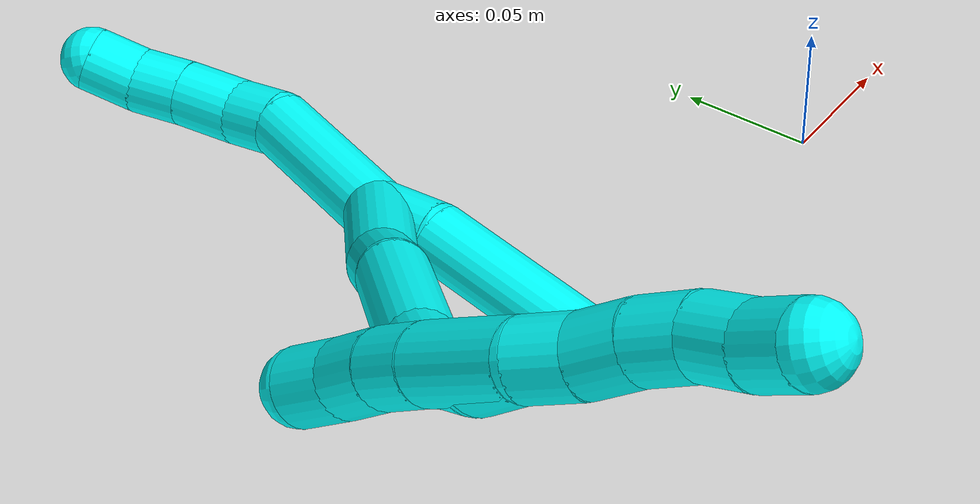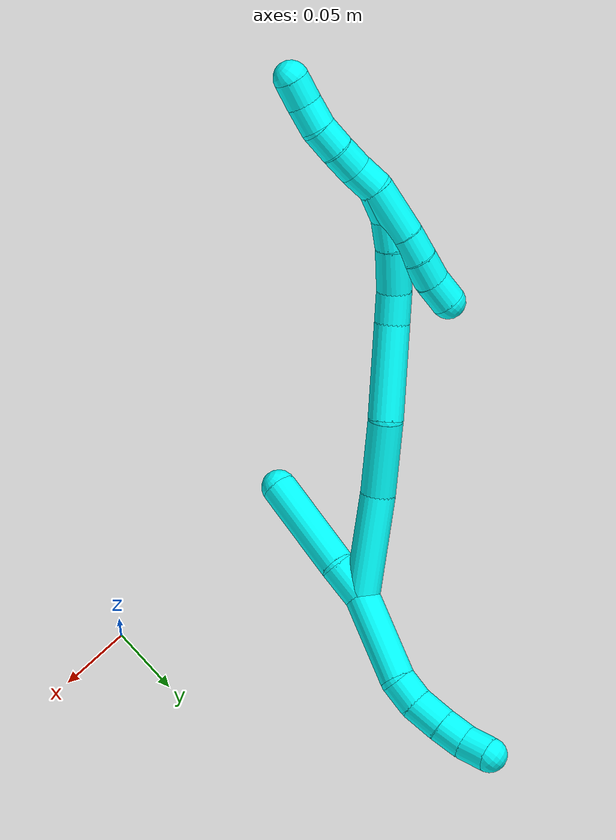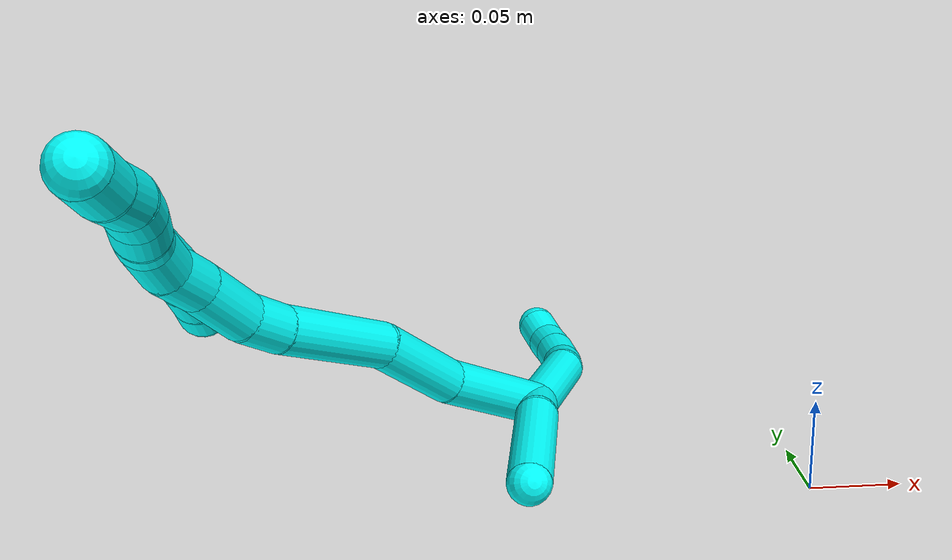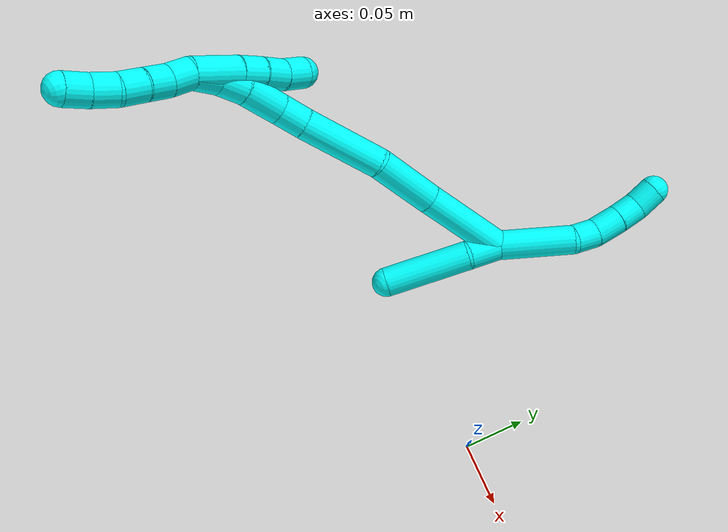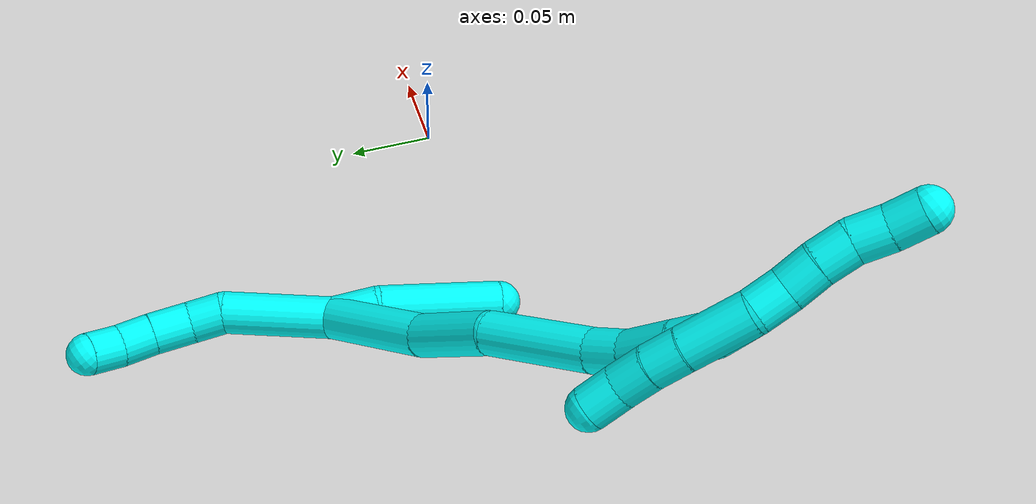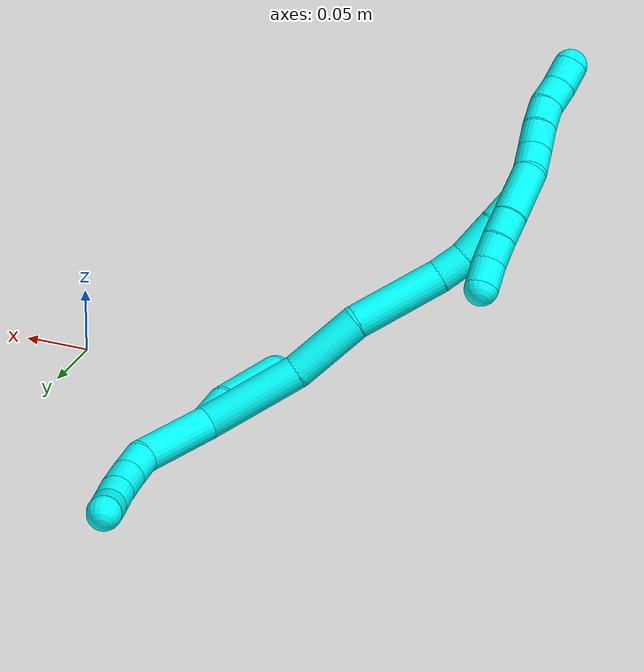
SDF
<sdf version="1.7">
 <world name="default">
  <model name="3">
   <static>0</static>
   <link name="3">
    <collision name="collision-cylinder-e_1_2_8">
     <pose>-0.000376 0.020792 -0.02478 -2.44348 -0.011616 0.031913</pose>
     <geometry><cylinder><radius>0.0125</radius><length>0.064698</length></cylinder></geometry>
     <surface>
      <friction><ode><mu>1.16</mu><mu2>1.16</mu2><slip1>0</slip1><slip2>0</slip2></ode></friction>
      <contact><ode><kp>1e+06</kp><kd>1</kd><max_vel>0</max_vel><min_depth>0.001</min_depth></ode></contact>
     </surface>
    </collision>
    <visual name="visual-cylinder-e_1_2_8">
     <pose>-0.000376 0.020792 -0.02478 -2.44348 -0.011616 0.031913</pose>
     <geometry><cylinder><radius>0.0125</radius><length>0.064698</length></cylinder></geometry>
     <material><ambient>0.003922 1 0.996078 1</ambient></material>
    </visual>
    <collision name="collision-cylinder-e_2_8_9">
     <pose>-0.001257 0.045202 -0.059178 -2.78181 -0.049157 0.268736</pose>
     <geometry><cylinder><radius>0.0125</radius><length>0.020578</length></cylinder></geometry>
     <surface>
      <friction><ode><mu>1.16</mu><mu2>1.16</mu2><slip1>0</slip1><slip2>0</slip2></ode></friction>
      <contact><ode><kp>1e+06</kp><kd>1</kd><max_vel>0</max_vel><min_depth>0.001</min_depth></ode></contact>
     </surface>
    </collision>
    <visual name="visual-cylinder-e_2_8_9">
     <pose>-0.001257 0.045202 -0.059178 -2.78181 -0.049157 0.268736</pose>
     <geometry><cylinder><radius>0.0125</radius><length>0.020578</length></cylinder></geometry>
     <material><ambient>0.003922 1 0.996078 1</ambient></material>
    </visual>
    <collision name="collision-cylinder-e_3_9_10">
     <pose>-0.005739 0.05285 -0.079468 -2.78052 -0.335386 1.49555</pose>
     <geometry><cylinder><radius>0.0125</radius><length>0.024162</length></cylinder></geometry>
     <surface>
      <friction><ode><mu>1.16</mu><mu2>1.16</mu2><slip1>0</slip1><slip2>0</slip2></ode></friction>
      <contact><ode><kp>1e+06</kp><kd>1</kd><max_vel>0</max_vel><min_depth>0.001</min_depth></ode></contact>
     </surface>
    </collision>
    <visual name="visual-cylinder-e_3_9_10">
     <pose>-0.005739 0.05285 -0.079468 -2.78052 -0.335386 1.49555</pose>
     <geometry><cylinder><radius>0.0125</radius><length>0.024162</length></cylinder></geometry>
     <material><ambient>0.003922 1 0.996078 1</ambient></material>
    </visual>
    <collision name="collision-cylinder-e_4_10_11">
     <pose>-0.013314 0.059633 -0.099133 -2.84454 -0.365457 1.78031</pose>
     <geometry><cylinder><radius>0.0125</radius><length>0.02014</length></cylinder></geometry>
     <surface>
      <friction><ode><mu>1.16</mu><mu2>1.16</mu2><slip1>0</slip1><slip2>0</slip2></ode></friction>
      <contact><ode><kp>1e+06</kp><kd>1</kd><max_vel>0</max_vel><min_depth>0.001</min_depth></ode></contact>
     </surface>
    </collision>
    <visual name="visual-cylinder-e_4_10_11">
     <pose>-0.013314 0.059633 -0.099133 -2.84454 -0.365457 1.78031</pose>
     <geometry><cylinder><radius>0.0125</radius><length>0.02014</length></cylinder></geometry>
     <material><ambient>0.003922 1 0.996078 1</ambient></material>
    </visual>
    <collision name="collision-cylinder-e_5_11_6">
     <pose>-0.023032 0.065589 -0.115647 -2.73897 -0.642612 2.04155</pose>
     <geometry><cylinder><radius>0.0125</radius><length>0.020422</length></cylinder></geometry>
     <surface>
      <friction><ode><mu>1.16</mu><mu2>1.16</mu2><slip1>0</slip1><slip2>0</slip2></ode></friction>
      <contact><ode><kp>1e+06</kp><kd>1</kd><max_vel>0</max_vel><min_depth>0.001</min_depth></ode></contact>
     </surface>
    </collision>
    <visual name="visual-cylinder-e_5_11_6">
     <pose>-0.023032 0.065589 -0.115647 -2.73897 -0.642612 2.04155</pose>
     <geometry><cylinder><radius>0.0125</radius><length>0.020422</length></cylinder></geometry>
     <material><ambient>0.003922 1 0.996078 1</ambient></material>
    </visual>
    <collision name="collision-cylinder-e_1_2_12">
     <pose>0.001625 -0.005526 0.012606 0.413104 0.117511 0.02465</pose>
     <geometry><cylinder><radius>0.0125</radius><length>0.02772</length></cylinder></geometry>
     <surface>
      <friction><ode><mu>1.16</mu><mu2>1.16</mu2><slip1>0</slip1><slip2>0</slip2></ode></friction>
      <contact><ode><kp>1e+06</kp><kd>1</kd><max_vel>0</max_vel><min_depth>0.001</min_depth></ode></contact>
     </surface>
    </collision>
    <visual name="visual-cylinder-e_1_2_12">
     <pose>0.001625 -0.005526 0.012606 0.413104 0.117511 0.02465</pose>
     <geometry><cylinder><radius>0.0125</radius><length>0.02772</length></cylinder></geometry>
     <material><ambient>0.003922 1 0.996078 1</ambient></material>
    </visual>
    <collision name="collision-cylinder-e_2_12_5">
     <pose>0.012153 -0.031455 0.053683 0.621819 0.248907 0.080354</pose>
     <geometry><cylinder><radius>0.0125</radius><length>0.07228</length></cylinder></geometry>
     <surface>
      <friction><ode><mu>1.16</mu><mu2>1.16</mu2><slip1>0</slip1><slip2>0</slip2></ode></friction>
      <contact><ode><kp>1e+06</kp><kd>1</kd><max_vel>0</max_vel><min_depth>0.001</min_depth></ode></contact>
     </surface>
    </collision>
    <visual name="visual-cylinder-e_2_12_5">
     <pose>0.012153 -0.031455 0.053683 0.621819 0.248907 0.080354</pose>
     <geometry><cylinder><radius>0.0125</radius><length>0.07228</length></cylinder></geometry>
     <material><ambient>0.003922 1 0.996078 1</ambient></material>
    </visual>
    <collision name="collision-cylinder-e_1_2_13">
     <pose>-0.023309 -0.02024 0.02061 0.77634 -0.67895 -0.286833</pose>
     <geometry><cylinder><radius>0.0125</radius><length>0.074237</length></cylinder></geometry>
     <surface>
      <friction><ode><mu>1.16</mu><mu2>1.16</mu2><slip1>0</slip1><slip2>0</slip2></ode></friction>
      <contact><ode><kp>1e+06</kp><kd>1</kd><max_vel>0</max_vel><min_depth>0.001</min_depth></ode></contact>
     </surface>
    </collision>
    <visual name="visual-cylinder-e_1_2_13">
     <pose>-0.023309 -0.02024 0.02061 0.77634 -0.67895 -0.286833</pose>
     <geometry><cylinder><radius>0.0125</radius><length>0.074237</length></cylinder></geometry>
     <material><ambient>0.003922 1 0.996078 1</ambient></material>
    </visual>
    <collision name="collision-cylinder-e_2_13_14">
     <pose>-0.065509 -0.051003 0.05836 0.550626 -0.754076 -0.222793</pose>
     <geometry><cylinder><radius>0.0125</radius><length>0.055185</length></cylinder></geometry>
     <surface>
      <friction><ode><mu>1.16</mu><mu2>1.16</mu2><slip1>0</slip1><slip2>0</slip2></ode></friction>
      <contact><ode><kp>1e+06</kp><kd>1</kd><max_vel>0</max_vel><min_depth>0.001</min_depth></ode></contact>
     </surface>
    </collision>
    <visual name="visual-cylinder-e_2_13_14">
     <pose>-0.065509 -0.051003 0.05836 0.550626 -0.754076 -0.222793</pose>
     <geometry><cylinder><radius>0.0125</radius><length>0.055185</length></cylinder></geometry>
     <material><ambient>0.003922 1 0.996078 1</ambient></material>
    </visual>
    <collision name="collision-cylinder-e_3_14_15">
     <pose>-0.102628 -0.081515 0.096117 0.769908 -0.565586 -0.234389</pose>
     <geometry><cylinder><radius>0.0125</radius><length>0.068027</length></cylinder></geometry>
     <surface>
      <friction><ode><mu>1.16</mu><mu2>1.16</mu2><slip1>0</slip1><slip2>0</slip2></ode></friction>
      <contact><ode><kp>1e+06</kp><kd>1</kd><max_vel>0</max_vel><min_depth>0.001</min_depth></ode></contact>
     </surface>
    </collision>
    <visual name="visual-cylinder-e_3_14_15">
     <pose>-0.102628 -0.081515 0.096117 0.769908 -0.565586 -0.234389</pose>
     <geometry><cylinder><radius>0.0125</radius><length>0.068027</length></cylinder></geometry>
     <material><ambient>0.003922 1 0.996078 1</ambient></material>
    </visual>
    <collision name="collision-cylinder-e_4_15_16">
     <pose>-0.127839 -0.107138 0.124067 0.655173 -0.646851 -0.226842</pose>
     <geometry><cylinder><radius>0.0125</radius><length>0.023175</length></cylinder></geometry>
     <surface>
      <friction><ode><mu>1.16</mu><mu2>1.16</mu2><slip1>0</slip1><slip2>0</slip2></ode></friction>
      <contact><ode><kp>1e+06</kp><kd>1</kd><max_vel>0</max_vel><min_depth>0.001</min_depth></ode></contact>
     </surface>
    </collision>
    <visual name="visual-cylinder-e_4_15_16">
     <pose>-0.127839 -0.107138 0.124067 0.655173 -0.646851 -0.226842</pose>
     <geometry><cylinder><radius>0.0125</radius><length>0.023175</length></cylinder></geometry>
     <material><ambient>0.003922 1 0.996078 1</ambient></material>
    </visual>
    <collision name="collision-cylinder-e_5_16_17">
     <pose>-0.145249 -0.117333 0.143088 0.372018 -0.69335 -0.13576</pose>
     <geometry><cylinder><radius>0.0125</radius><length>0.032627</length></cylinder></geometry>
     <surface>
      <friction><ode><mu>1.16</mu><mu2>1.16</mu2><slip1>0</slip1><slip2>0</slip2></ode></friction>
      <contact><ode><kp>1e+06</kp><kd>1</kd><max_vel>0</max_vel><min_depth>0.001</min_depth></ode></contact>
     </surface>
    </collision>
    <visual name="visual-cylinder-e_5_16_17">
     <pose>-0.145249 -0.117333 0.143088 0.372018 -0.69335 -0.13576</pose>
     <geometry><cylinder><radius>0.0125</radius><length>0.032627</length></cylinder></geometry>
     <material><ambient>0.003922 1 0.996078 1</ambient></material>
    </visual>
    <collision name="collision-cylinder-e_6_17_18">
     <pose>-0.161591 -0.125564 0.163701 0.39018 -0.549927 -0.111376</pose>
     <geometry><cylinder><radius>0.0125</radius><length>0.022638</length></cylinder></geometry>
     <surface>
      <friction><ode><mu>1.16</mu><mu2>1.16</mu2><slip1>0</slip1><slip2>0</slip2></ode></friction>
      <contact><ode><kp>1e+06</kp><kd>1</kd><max_vel>0</max_vel><min_depth>0.001</min_depth></ode></contact>
     </surface>
    </collision>
    <visual name="visual-cylinder-e_6_17_18">
     <pose>-0.161591 -0.125564 0.163701 0.39018 -0.549927 -0.111376</pose>
     <geometry><cylinder><radius>0.0125</radius><length>0.022638</length></cylinder></geometry>
     <material><ambient>0.003922 1 0.996078 1</ambient></material>
    </visual>
    <collision name="collision-cylinder-e_7_18_1">
     <pose>-0.172623 -0.130022 0.183514 0.07219 -0.438328 -0.016086</pose>
     <geometry><cylinder><radius>0.0125</radius><length>0.024112</length></cylinder></geometry>
     <surface>
      <friction><ode><mu>1.16</mu><mu2>1.16</mu2><slip1>0</slip1><slip2>0</slip2></ode></friction>
      <contact><ode><kp>1e+06</kp><kd>1</kd><max_vel>0</max_vel><min_depth>0.001</min_depth></ode></contact>
     </surface>
    </collision>
    <visual name="visual-cylinder-e_7_18_1">
     <pose>-0.172623 -0.130022 0.183514 0.07219 -0.438328 -0.016086</pose>
     <geometry><cylinder><radius>0.0125</radius><length>0.024112</length></cylinder></geometry>
     <material><ambient>0.003922 1 0.996078 1</ambient></material>
    </visual>
    <collision name="collision-cylinder-e_1_1_19">
     <pose>-0.177617 -0.131227 0.204392 0.041771 0.012306 0.000257</pose>
     <geometry><cylinder><radius>0.0125</radius><length>0.02</length></cylinder></geometry>
     <surface>
      <friction><ode><mu>1.16</mu><mu2>1.16</mu2><slip1>0</slip1><slip2>0</slip2></ode></friction>
      <contact><ode><kp>1e+06</kp><kd>1</kd><max_vel>0</max_vel><min_depth>0.001</min_depth></ode></contact>
     </surface>
    </collision>
    <visual name="visual-cylinder-e_1_1_19">
     <pose>-0.177617 -0.131227 0.204392 0.041771 0.012306 0.000257</pose>
     <geometry><cylinder><radius>0.0125</radius><length>0.02</length></cylinder></geometry>
     <material><ambient>0.003922 1 0.996078 1</ambient></material>
    </visual>
    <collision name="collision-cylinder-e_2_19_20">
     <pose>-0.179031 -0.131171 0.224252 -0.047884 -0.154336 0.003703</pose>
     <geometry><cylinder><radius>0.0125</radius><length>0.02</length></cylinder></geometry>
     <surface>
      <friction><ode><mu>1.16</mu><mu2>1.16</mu2><slip1>0</slip1><slip2>0</slip2></ode></friction>
      <contact><ode><kp>1e+06</kp><kd>1</kd><max_vel>0</max_vel><min_depth>0.001</min_depth></ode></contact>
     </surface>
    </collision>
    <visual name="visual-cylinder-e_2_19_20">
     <pose>-0.179031 -0.131171 0.224252 -0.047884 -0.154336 0.003703</pose>
     <geometry><cylinder><radius>0.0125</radius><length>0.02</length></cylinder></geometry>
     <material><ambient>0.003922 1 0.996078 1</ambient></material>
    </visual>
    <collision name="collision-cylinder-e_3_20_21">
     <pose>-0.181628 -0.131347 0.244045 0.065265 -0.106169 -0.003469</pose>
     <geometry><cylinder><radius>0.0125</radius><length>0.02</length></cylinder></geometry>
     <surface>
      <friction><ode><mu>1.16</mu><mu2>1.16</mu2><slip1>0</slip1><slip2>0</slip2></ode></friction>
      <contact><ode><kp>1e+06</kp><kd>1</kd><max_vel>0</max_vel><min_depth>0.001</min_depth></ode></contact>
     </surface>
    </collision>
    <visual name="visual-cylinder-e_3_20_21">
     <pose>-0.181628 -0.131347 0.244045 0.065265 -0.106169 -0.003469</pose>
     <geometry><cylinder><radius>0.0125</radius><length>0.02</length></cylinder></geometry>
     <material><ambient>0.003922 1 0.996078 1</ambient></material>
    </visual>
    <collision name="collision-cylinder-e_4_21_22">
     <pose>-0.184478 -0.134847 0.263383 0.294099 -0.179971 -0.026728</pose>
     <geometry><cylinder><radius>0.0125</radius><length>0.02</length></cylinder></geometry>
     <surface>
      <friction><ode><mu>1.16</mu><mu2>1.16</mu2><slip1>0</slip1><slip2>0</slip2></ode></friction>
      <contact><ode><kp>1e+06</kp><kd>1</kd><max_vel>0</max_vel><min_depth>0.001</min_depth></ode></contact>
     </surface>
    </collision>
    <visual name="visual-cylinder-e_4_21_22">
     <pose>-0.184478 -0.134847 0.263383 0.294099 -0.179971 -0.026728</pose>
     <geometry><cylinder><radius>0.0125</radius><length>0.02</length></cylinder></geometry>
     <material><ambient>0.003922 1 0.996078 1</ambient></material>
    </visual>
    <collision name="collision-cylinder-e_5_22_4">
     <pose>-0.189238 -0.139418 0.282192 0.181036 -0.30159 -0.027582</pose>
     <geometry><cylinder><radius>0.0125</radius><length>0.02</length></cylinder></geometry>
     <surface>
      <friction><ode><mu>1.16</mu><mu2>1.16</mu2><slip1>0</slip1><slip2>0</slip2></ode></friction>
      <contact><ode><kp>1e+06</kp><kd>1</kd><max_vel>0</max_vel><min_depth>0.001</min_depth></ode></contact>
     </surface>
    </collision>
    <visual name="visual-cylinder-e_5_22_4">
     <pose>-0.189238 -0.139418 0.282192 0.181036 -0.30159 -0.027582</pose>
     <geometry><cylinder><radius>0.0125</radius><length>0.02</length></cylinder></geometry>
     <material><ambient>0.003922 1 0.996078 1</ambient></material>
    </visual>
    <collision name="collision-cylinder-e_1_1_23">
     <pose>-0.173406 -0.128137 0.175334 -3.00239 0.221379 -2.02115</pose>
     <geometry><cylinder><radius>0.0125</radius><length>0.039472</length></cylinder></geometry>
     <surface>
      <friction><ode><mu>1.16</mu><mu2>1.16</mu2><slip1>0</slip1><slip2>0</slip2></ode></friction>
      <contact><ode><kp>1e+06</kp><kd>1</kd><max_vel>0</max_vel><min_depth>0.001</min_depth></ode></contact>
     </surface>
    </collision>
    <visual name="visual-cylinder-e_1_1_23">
     <pose>-0.173406 -0.128137 0.175334 -3.00239 0.221379 -2.02115</pose>
     <geometry><cylinder><radius>0.0125</radius><length>0.039472</length></cylinder></geometry>
     <material><ambient>0.003922 1 0.996078 1</ambient></material>
    </visual>
    <collision name="collision-cylinder-e_2_23_24">
     <pose>-0.166158 -0.124237 0.146702 -3.0138 0.293537 -2.32468</pose>
     <geometry><cylinder><radius>0.0125</radius><length>0.020146</length></cylinder></geometry>
     <surface>
      <friction><ode><mu>1.16</mu><mu2>1.16</mu2><slip1>0</slip1><slip2>0</slip2></ode></friction>
      <contact><ode><kp>1e+06</kp><kd>1</kd><max_vel>0</max_vel><min_depth>0.001</min_depth></ode></contact>
     </surface>
    </collision>
    <visual name="visual-cylinder-e_2_23_24">
     <pose>-0.166158 -0.124237 0.146702 -3.0138 0.293537 -2.32468</pose>
     <geometry><cylinder><radius>0.0125</radius><length>0.020146</length></cylinder></geometry>
     <material><ambient>0.003922 1 0.996078 1</ambient></material>
    </visual>
    <collision name="collision-cylinder-e_3_24_25">
     <pose>-0.159801 -0.122517 0.127706 -3.08956 0.349546 -2.84897</pose>
     <geometry><cylinder><radius>0.0125</radius><length>0.020107</length></cylinder></geometry>
     <surface>
      <friction><ode><mu>1.16</mu><mu2>1.16</mu2><slip1>0</slip1><slip2>0</slip2></ode></friction>
      <contact><ode><kp>1e+06</kp><kd>1</kd><max_vel>0</max_vel><min_depth>0.001</min_depth></ode></contact>
     </surface>
    </collision>
    <visual name="visual-cylinder-e_3_24_25">
     <pose>-0.159801 -0.122517 0.127706 -3.08956 0.349546 -2.84897</pose>
     <geometry><cylinder><radius>0.0125</radius><length>0.020107</length></cylinder></geometry>
     <material><ambient>0.003922 1 0.996078 1</ambient></material>
    </visual>
    <collision name="collision-cylinder-e_4_25_3">
     <pose>-0.154415 -0.121788 0.108326 -3.11768 0.192869 -2.89564</pose>
     <geometry><cylinder><radius>0.0125</radius><length>0.020275</length></cylinder></geometry>
     <surface>
      <friction><ode><mu>1.16</mu><mu2>1.16</mu2><slip1>0</slip1><slip2>0</slip2></ode></friction>
      <contact><ode><kp>1e+06</kp><kd>1</kd><max_vel>0</max_vel><min_depth>0.001</min_depth></ode></contact>
     </surface>
    </collision>
    <visual name="visual-cylinder-e_4_25_3">
     <pose>-0.154415 -0.121788 0.108326 -3.11768 0.192869 -2.89564</pose>
     <geometry><cylinder><radius>0.0125</radius><length>0.020275</length></cylinder></geometry>
     <material><ambient>0.003922 1 0.996078 1</ambient></material>
    </visual>
    <collision name="collision-sphere-3">
     <pose>-0.152471 -0.12155 0.098379 0 -0 0</pose>
     <geometry><sphere><radius>0.0125</radius></sphere></geometry>
     <surface>
      <friction><ode><mu>1.16</mu><mu2>1.16</mu2><slip1>0</slip1><slip2>0</slip2></ode></friction>
      <contact><ode><kp>1e+06</kp><kd>1</kd><max_vel>0</max_vel><min_depth>0.001</min_depth></ode></contact>
     </surface>
    </collision>
    <visual name="visual-sphere-3">
     <pose>-0.152471 -0.12155 0.098379 0 -0 0</pose>
     <geometry><sphere><radius>0.0125</radius></sphere></geometry>
     <material><ambient>0.003922 1 0.996078 1</ambient></material>
    </visual>
    <collision name="collision-sphere-25">
     <pose>-0.156358 -0.122026 0.118273 0 -0 0</pose>
     <geometry><sphere><radius>0.0125</radius></sphere></geometry>
     <surface>
      <friction><ode><mu>1.16</mu><mu2>1.16</mu2><slip1>0</slip1><slip2>0</slip2></ode></friction>
      <contact><ode><kp>1e+06</kp><kd>1</kd><max_vel>0</max_vel><min_depth>0.001</min_depth></ode></contact>
     </surface>
    </collision>
    <visual name="visual-sphere-25">
     <pose>-0.156358 -0.122026 0.118273 0 -0 0</pose>
     <geometry><sphere><radius>0.0125</radius></sphere></geometry>
     <material><ambient>0.003922 1 0.996078 1</ambient></material>
    </visual>
    <collision name="collision-sphere-24">
     <pose>-0.163244 -0.123008 0.137139 0 -0 0</pose>
     <geometry><sphere><radius>0.0125</radius></sphere></geometry>
     <surface>
      <friction><ode><mu>1.16</mu><mu2>1.16</mu2><slip1>0</slip1><slip2>0</slip2></ode></friction>
      <contact><ode><kp>1e+06</kp><kd>1</kd><max_vel>0</max_vel><min_depth>0.001</min_depth></ode></contact>
     </surface>
    </collision>
    <visual name="visual-sphere-24">
     <pose>-0.163244 -0.123008 0.137139 0 -0 0</pose>
     <geometry><sphere><radius>0.0125</radius></sphere></geometry>
     <material><ambient>0.003922 1 0.996078 1</ambient></material>
    </visual>
    <collision name="collision-sphere-23">
     <pose>-0.169073 -0.125466 0.156266 0 -0 0</pose>
     <geometry><sphere><radius>0.0125</radius></sphere></geometry>
     <surface>
      <friction><ode><mu>1.16</mu><mu2>1.16</mu2><slip1>0</slip1><slip2>0</slip2></ode></friction>
      <contact><ode><kp>1e+06</kp><kd>1</kd><max_vel>0</max_vel><min_depth>0.001</min_depth></ode></contact>
     </surface>
    </collision>
    <visual name="visual-sphere-23">
     <pose>-0.169073 -0.125466 0.156266 0 -0 0</pose>
     <geometry><sphere><radius>0.0125</radius></sphere></geometry>
     <material><ambient>0.003922 1 0.996078 1</ambient></material>
    </visual>
    <collision name="collision-sphere-4">
     <pose>-0.192208 -0.141138 0.291585 0 -0 0</pose>
     <geometry><sphere><radius>0.0125</radius></sphere></geometry>
     <surface>
      <friction><ode><mu>1.16</mu><mu2>1.16</mu2><slip1>0</slip1><slip2>0</slip2></ode></friction>
      <contact><ode><kp>1e+06</kp><kd>1</kd><max_vel>0</max_vel><min_depth>0.001</min_depth></ode></contact>
     </surface>
    </collision>
    <visual name="visual-sphere-4">
     <pose>-0.192208 -0.141138 0.291585 0 -0 0</pose>
     <geometry><sphere><radius>0.0125</radius></sphere></geometry>
     <material><ambient>0.003922 1 0.996078 1</ambient></material>
    </visual>
    <collision name="collision-sphere-22">
     <pose>-0.186268 -0.137699 0.272799 0 -0 0</pose>
     <geometry><sphere><radius>0.0125</radius></sphere></geometry>
     <surface>
      <friction><ode><mu>1.16</mu><mu2>1.16</mu2><slip1>0</slip1><slip2>0</slip2></ode></friction>
      <contact><ode><kp>1e+06</kp><kd>1</kd><max_vel>0</max_vel><min_depth>0.001</min_depth></ode></contact>
     </surface>
    </collision>
    <visual name="visual-sphere-22">
     <pose>-0.186268 -0.137699 0.272799 0 -0 0</pose>
     <geometry><sphere><radius>0.0125</radius></sphere></geometry>
     <material><ambient>0.003922 1 0.996078 1</ambient></material>
    </visual>
    <collision name="collision-sphere-21">
     <pose>-0.182688 -0.131995 0.253967 0 -0 0</pose>
     <geometry><sphere><radius>0.0125</radius></sphere></geometry>
     <surface>
      <friction><ode><mu>1.16</mu><mu2>1.16</mu2><slip1>0</slip1><slip2>0</slip2></ode></friction>
      <contact><ode><kp>1e+06</kp><kd>1</kd><max_vel>0</max_vel><min_depth>0.001</min_depth></ode></contact>
     </surface>
    </collision>
    <visual name="visual-sphere-21">
     <pose>-0.182688 -0.131995 0.253967 0 -0 0</pose>
     <geometry><sphere><radius>0.0125</radius></sphere></geometry>
     <material><ambient>0.003922 1 0.996078 1</ambient></material>
    </visual>
    <collision name="collision-sphere-20">
     <pose>-0.180568 -0.130698 0.234122 0 -0 0</pose>
     <geometry><sphere><radius>0.0125</radius></sphere></geometry>
     <surface>
      <friction><ode><mu>1.16</mu><mu2>1.16</mu2><slip1>0</slip1><slip2>0</slip2></ode></friction>
      <contact><ode><kp>1e+06</kp><kd>1</kd><max_vel>0</max_vel><min_depth>0.001</min_depth></ode></contact>
     </surface>
    </collision>
    <visual name="visual-sphere-20">
     <pose>-0.180568 -0.130698 0.234122 0 -0 0</pose>
     <geometry><sphere><radius>0.0125</radius></sphere></geometry>
     <material><ambient>0.003922 1 0.996078 1</ambient></material>
    </visual>
    <collision name="collision-sphere-6">
     <pose>-0.029151 0.068792 -0.123168 0 -0 0</pose>
     <geometry><sphere><radius>0.0125</radius></sphere></geometry>
     <surface>
      <friction><ode><mu>1.16</mu><mu2>1.16</mu2><slip1>0</slip1><slip2>0</slip2></ode></friction>
      <contact><ode><kp>1e+06</kp><kd>1</kd><max_vel>0</max_vel><min_depth>0.001</min_depth></ode></contact>
     </surface>
    </collision>
    <visual name="visual-sphere-6">
     <pose>-0.029151 0.068792 -0.123168 0 -0 0</pose>
     <geometry><sphere><radius>0.0125</radius></sphere></geometry>
     <material><ambient>0.003922 1 0.996078 1</ambient></material>
    </visual>
    <collision name="collision-sphere-11">
     <pose>-0.016913 0.062386 -0.108126 0 -0 0</pose>
     <geometry><sphere><radius>0.0125</radius></sphere></geometry>
     <surface>
      <friction><ode><mu>1.16</mu><mu2>1.16</mu2><slip1>0</slip1><slip2>0</slip2></ode></friction>
      <contact><ode><kp>1e+06</kp><kd>1</kd><max_vel>0</max_vel><min_depth>0.001</min_depth></ode></contact>
     </surface>
    </collision>
    <visual name="visual-sphere-11">
     <pose>-0.016913 0.062386 -0.108126 0 -0 0</pose>
     <geometry><sphere><radius>0.0125</radius></sphere></geometry>
     <material><ambient>0.003922 1 0.996078 1</ambient></material>
    </visual>
    <collision name="collision-sphere-10">
     <pose>-0.009715 0.05688 -0.090141 0 -0 0</pose>
     <geometry><sphere><radius>0.0125</radius></sphere></geometry>
     <surface>
      <friction><ode><mu>1.16</mu><mu2>1.16</mu2><slip1>0</slip1><slip2>0</slip2></ode></friction>
      <contact><ode><kp>1e+06</kp><kd>1</kd><max_vel>0</max_vel><min_depth>0.001</min_depth></ode></contact>
     </surface>
    </collision>
    <visual name="visual-sphere-10">
     <pose>-0.009715 0.05688 -0.090141 0 -0 0</pose>
     <geometry><sphere><radius>0.0125</radius></sphere></geometry>
     <material><ambient>0.003922 1 0.996078 1</ambient></material>
    </visual>
    <collision name="collision-sphere-9">
     <pose>-0.001763 0.04882 -0.068796 0 -0 0</pose>
     <geometry><sphere><radius>0.0125</radius></sphere></geometry>
     <surface>
      <friction><ode><mu>1.16</mu><mu2>1.16</mu2><slip1>0</slip1><slip2>0</slip2></ode></friction>
      <contact><ode><kp>1e+06</kp><kd>1</kd><max_vel>0</max_vel><min_depth>0.001</min_depth></ode></contact>
     </surface>
    </collision>
    <visual name="visual-sphere-9">
     <pose>-0.001763 0.04882 -0.068796 0 -0 0</pose>
     <geometry><sphere><radius>0.0125</radius></sphere></geometry>
     <material><ambient>0.003922 1 0.996078 1</ambient></material>
    </visual>
    <collision name="collision-sphere-2">
     <geometry><sphere><radius>0.0125</radius></sphere></geometry>
     <surface>
      <friction><ode><mu>1.16</mu><mu2>1.16</mu2><slip1>0</slip1><slip2>0</slip2></ode></friction>
      <contact><ode><kp>1e+06</kp><kd>1</kd><max_vel>0</max_vel><min_depth>0.001</min_depth></ode></contact>
     </surface>
    </collision>
    <visual name="visual-sphere-2">
     <geometry><sphere><radius>0.0125</radius></sphere></geometry>
     <material><ambient>0.003922 1 0.996078 1</ambient></material>
    </visual>
    <collision name="collision-sphere-19">
     <pose>-0.177494 -0.131644 0.214383 0 -0 0</pose>
     <geometry><sphere><radius>0.0125</radius></sphere></geometry>
     <surface>
      <friction><ode><mu>1.16</mu><mu2>1.16</mu2><slip1>0</slip1><slip2>0</slip2></ode></friction>
      <contact><ode><kp>1e+06</kp><kd>1</kd><max_vel>0</max_vel><min_depth>0.001</min_depth></ode></contact>
     </surface>
    </collision>
    <visual name="visual-sphere-19">
     <pose>-0.177494 -0.131644 0.214383 0 -0 0</pose>
     <geometry><sphere><radius>0.0125</radius></sphere></geometry>
     <material><ambient>0.003922 1 0.996078 1</ambient></material>
    </visual>
    <collision name="collision-sphere-8">
     <pose>-0.000752 0.041584 -0.049559 0 -0 0</pose>
     <geometry><sphere><radius>0.0125</radius></sphere></geometry>
     <surface>
      <friction><ode><mu>1.16</mu><mu2>1.16</mu2><slip1>0</slip1><slip2>0</slip2></ode></friction>
      <contact><ode><kp>1e+06</kp><kd>1</kd><max_vel>0</max_vel><min_depth>0.001</min_depth></ode></contact>
     </surface>
    </collision>
    <visual name="visual-sphere-8">
     <pose>-0.000752 0.041584 -0.049559 0 -0 0</pose>
     <geometry><sphere><radius>0.0125</radius></sphere></geometry>
     <material><ambient>0.003922 1 0.996078 1</ambient></material>
    </visual>
    <collision name="collision-sphere-12">
     <pose>0.00325 -0.011051 0.025213 0 -0 0</pose>
     <geometry><sphere><radius>0.0125</radius></sphere></geometry>
     <surface>
      <friction><ode><mu>1.16</mu><mu2>1.16</mu2><slip1>0</slip1><slip2>0</slip2></ode></friction>
      <contact><ode><kp>1e+06</kp><kd>1</kd><max_vel>0</max_vel><min_depth>0.001</min_depth></ode></contact>
     </surface>
    </collision>
    <visual name="visual-sphere-12">
     <pose>0.00325 -0.011051 0.025213 0 -0 0</pose>
     <geometry><sphere><radius>0.0125</radius></sphere></geometry>
     <material><ambient>0.003922 1 0.996078 1</ambient></material>
    </visual>
    <collision name="collision-sphere-5">
     <pose>0.021056 -0.051858 0.082153 0 -0 0</pose>
     <geometry><sphere><radius>0.0125</radius></sphere></geometry>
     <surface>
      <friction><ode><mu>1.16</mu><mu2>1.16</mu2><slip1>0</slip1><slip2>0</slip2></ode></friction>
      <contact><ode><kp>1e+06</kp><kd>1</kd><max_vel>0</max_vel><min_depth>0.001</min_depth></ode></contact>
     </surface>
    </collision>
    <visual name="visual-sphere-5">
     <pose>0.021056 -0.051858 0.082153 0 -0 0</pose>
     <geometry><sphere><radius>0.0125</radius></sphere></geometry>
     <material><ambient>0.003922 1 0.996078 1</ambient></material>
    </visual>
    <collision name="collision-sphere-13">
     <pose>-0.046619 -0.04048 0.04122 0 -0 0</pose>
     <geometry><sphere><radius>0.0125</radius></sphere></geometry>
     <surface>
      <friction><ode><mu>1.16</mu><mu2>1.16</mu2><slip1>0</slip1><slip2>0</slip2></ode></friction>
      <contact><ode><kp>1e+06</kp><kd>1</kd><max_vel>0</max_vel><min_depth>0.001</min_depth></ode></contact>
     </surface>
    </collision>
    <visual name="visual-sphere-13">
     <pose>-0.046619 -0.04048 0.04122 0 -0 0</pose>
     <geometry><sphere><radius>0.0125</radius></sphere></geometry>
     <material><ambient>0.003922 1 0.996078 1</ambient></material>
    </visual>
    <collision name="collision-sphere-14">
     <pose>-0.084399 -0.061527 0.0755 0 -0 0</pose>
     <geometry><sphere><radius>0.0125</radius></sphere></geometry>
     <surface>
      <friction><ode><mu>1.16</mu><mu2>1.16</mu2><slip1>0</slip1><slip2>0</slip2></ode></friction>
      <contact><ode><kp>1e+06</kp><kd>1</kd><max_vel>0</max_vel><min_depth>0.001</min_depth></ode></contact>
     </surface>
    </collision>
    <visual name="visual-sphere-14">
     <pose>-0.084399 -0.061527 0.0755 0 -0 0</pose>
     <geometry><sphere><radius>0.0125</radius></sphere></geometry>
     <material><ambient>0.003922 1 0.996078 1</ambient></material>
    </visual>
    <collision name="collision-sphere-15">
     <pose>-0.120856 -0.101504 0.116735 0 -0 0</pose>
     <geometry><sphere><radius>0.0125</radius></sphere></geometry>
     <surface>
      <friction><ode><mu>1.16</mu><mu2>1.16</mu2><slip1>0</slip1><slip2>0</slip2></ode></friction>
      <contact><ode><kp>1e+06</kp><kd>1</kd><max_vel>0</max_vel><min_depth>0.001</min_depth></ode></contact>
     </surface>
    </collision>
    <visual name="visual-sphere-15">
     <pose>-0.120856 -0.101504 0.116735 0 -0 0</pose>
     <geometry><sphere><radius>0.0125</radius></sphere></geometry>
     <material><ambient>0.003922 1 0.996078 1</ambient></material>
    </visual>
    <collision name="collision-sphere-16">
     <pose>-0.134823 -0.112772 0.131399 0 -0 0</pose>
     <geometry><sphere><radius>0.0125</radius></sphere></geometry>
     <surface>
      <friction><ode><mu>1.16</mu><mu2>1.16</mu2><slip1>0</slip1><slip2>0</slip2></ode></friction>
      <contact><ode><kp>1e+06</kp><kd>1</kd><max_vel>0</max_vel><min_depth>0.001</min_depth></ode></contact>
     </surface>
    </collision>
    <visual name="visual-sphere-16">
     <pose>-0.134823 -0.112772 0.131399 0 -0 0</pose>
     <geometry><sphere><radius>0.0125</radius></sphere></geometry>
     <material><ambient>0.003922 1 0.996078 1</ambient></material>
    </visual>
    <collision name="collision-sphere-17">
     <pose>-0.155675 -0.121893 0.154776 0 -0 0</pose>
     <geometry><sphere><radius>0.0125</radius></sphere></geometry>
     <surface>
      <friction><ode><mu>1.16</mu><mu2>1.16</mu2><slip1>0</slip1><slip2>0</slip2></ode></friction>
      <contact><ode><kp>1e+06</kp><kd>1</kd><max_vel>0</max_vel><min_depth>0.001</min_depth></ode></contact>
     </surface>
    </collision>
    <visual name="visual-sphere-17">
     <pose>-0.155675 -0.121893 0.154776 0 -0 0</pose>
     <geometry><sphere><radius>0.0125</radius></sphere></geometry>
     <material><ambient>0.003922 1 0.996078 1</ambient></material>
    </visual>
    <collision name="collision-sphere-18">
     <pose>-0.167506 -0.129234 0.172626 0 -0 0</pose>
     <geometry><sphere><radius>0.0125</radius></sphere></geometry>
     <surface>
      <friction><ode><mu>1.16</mu><mu2>1.16</mu2><slip1>0</slip1><slip2>0</slip2></ode></friction>
      <contact><ode><kp>1e+06</kp><kd>1</kd><max_vel>0</max_vel><min_depth>0.001</min_depth></ode></contact>
     </surface>
    </collision>
    <visual name="visual-sphere-18">
     <pose>-0.167506 -0.129234 0.172626 0 -0 0</pose>
     <geometry><sphere><radius>0.0125</radius></sphere></geometry>
     <material><ambient>0.003922 1 0.996078 1</ambient></material>
    </visual>
    <collision name="collision-sphere-1">
     <pose>-0.17774 -0.130809 0.194402 0 -0 0</pose>
     <geometry><sphere><radius>0.0125</radius></sphere></geometry>
     <surface>
      <friction><ode><mu>1.16</mu><mu2>1.16</mu2><slip1>0</slip1><slip2>0</slip2></ode></friction>
      <contact><ode><kp>1e+06</kp><kd>1</kd><max_vel>0</max_vel><min_depth>0.001</min_depth></ode></contact>
     </surface>
    </collision>
    <visual name="visual-sphere-1">
     <pose>-0.17774 -0.130809 0.194402 0 -0 0</pose>
     <geometry><sphere><radius>0.0125</radius></sphere></geometry>
     <material><ambient>0.003922 1 0.996078 1</ambient></material>
    </visual>
    <inertial>
     <pose>-0.083505 -0.059118 0.081466 0 -0 0</pose>
     <mass>0.75</mass>
     <inertia>
      <ixx>0.000103</ixx>
      <ixy>0</ixy>
      <ixz>0</ixz>
      <iyy>7.7e-05</iyy>
      <iyz>0</iyz>
      <izz>0.000108</izz>
     </inertia>
    </inertial>
   </link>
   <pose>-0.14134 0.096111 0.016324 0.844881 0.82745 -0.377384</pose>
  </model>
 </world>
</sdf>
